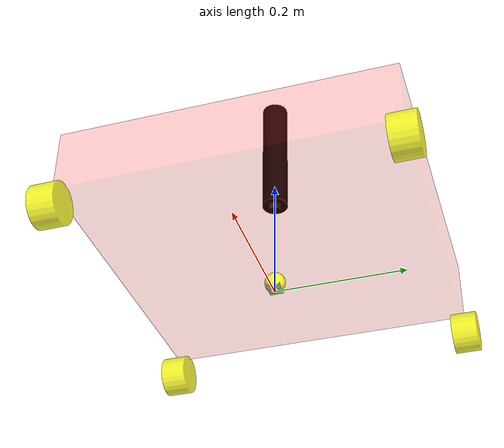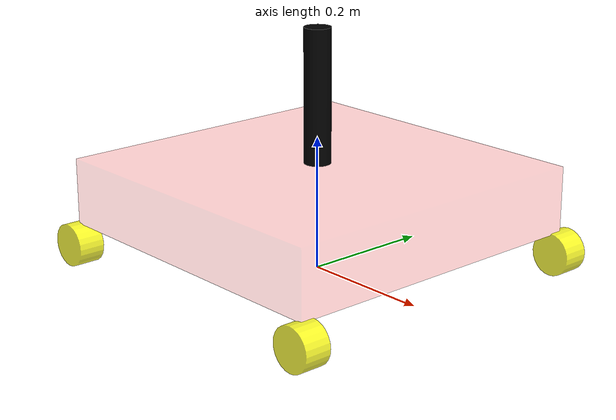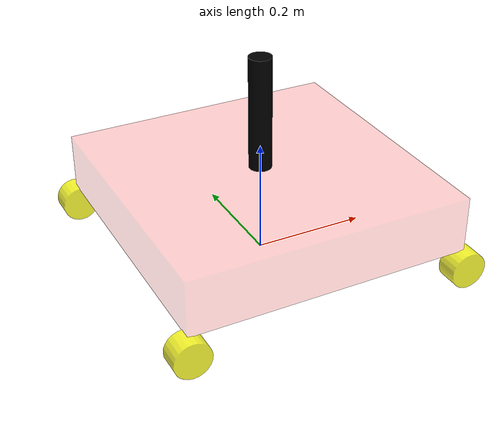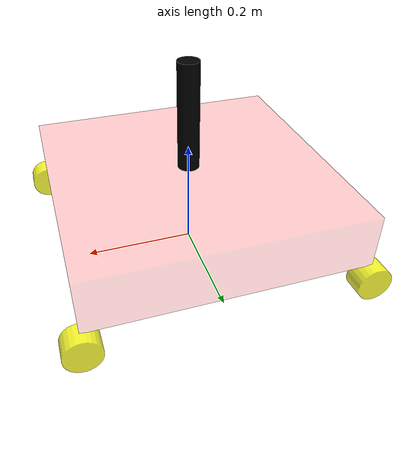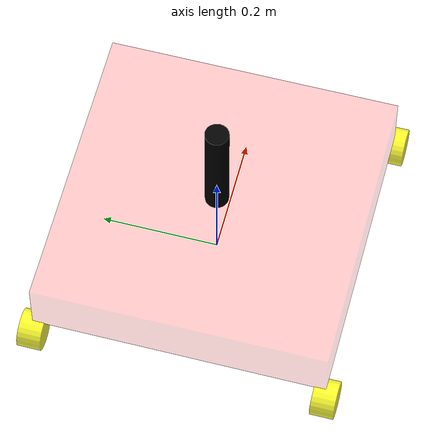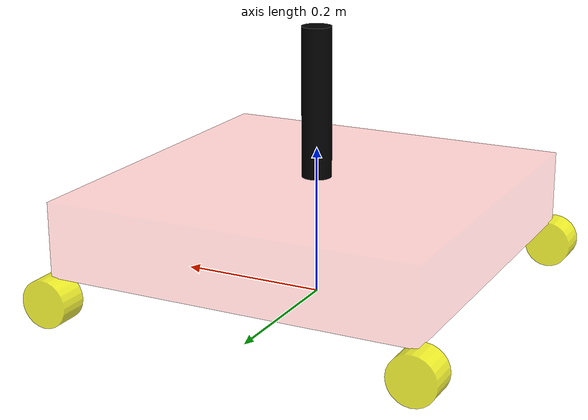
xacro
<?xml version="1.0"?>

<robot name="fishbot" xmlns:xacro="http://www.ros.org/wiki/xacro">

    <!-- 包含机器人的身体部件 -->
    <xacro:include filename="base.xacro"/>
    <xacro:include filename="imu.xacro"/>
    <xacro:include filename="laser.xacro"/>
    <xacro:include filename="drive_wheel.xacro"/>
    <xacro:include filename="caster_wheel.xacro"/>

    <!-- 调用宏 -->
    <xacro:base_xacro length="0.5" width="0.5" height="0.1"/> <!-- 机器人的身体部件 -->
    <xacro:imu_xacro xyz = "0 0 -0.1"/> <!-- 机器人的IMU部件 -->
    <xacro:laser_xacro xyz = "0 0 0.1"/> <!-- 机器人的激光雷达部件 -->
    <xacro:drive_wheel_xacro wheel_name="left_front_wheel"   xyz = " 0.25  0.25 -0.08"/> <!-- 左前驱动轮 -->
    <xacro:drive_wheel_xacro wheel_name="right_front_wheel"  xyz = " 0.25 -0.25 -0.08"/> <!-- 右前驱动轮 -->
    <xacro:drive_wheel_xacro wheel_name="left_rear_wheel"    xyz = "-0.25  0.25 -0.08"/> <!-- 左后驱动轮 -->
    <xacro:drive_wheel_xacro wheel_name="right_rear_wheel"   xyz = "-0.25 -0.25 -0.08"/> <!-- 右后驱动轮 -->
    <xacro:caster_wheel_xacro wheel_name="center_caster" xyz = "0 0 -0.096"/> <!-- 中心万向轮 -->

    <!-- ==================== 差速驱动插件 ==================== -->
    <gazebo>
        <plugin
            filename="libignition-gazebo-diff-drive-system.so"
            name="ignition::gazebo::systems::DiffDrive">        <!-- Gazebo 内置差速驱动插件库 --> <!-- 插件全限定名 -->
            <!-- 左侧驱动轮关节（两个轮子速度一致，通过差速实现转向） -->
            <left_joint>left_front_wheel_joint</left_joint>
            <left_joint>left_rear_wheel_joint</left_joint>
            <!-- 右侧驱动轮关节 -->
            <right_joint>right_front_wheel_joint</right_joint>
            <right_joint>right_rear_wheel_joint</right_joint>
            <!-- 左右轮间距（米），用于差速运动学解算 -->
            <wheel_separation>0.5</wheel_separation>
            <!-- 轮子半径（米），用于线速度与角速度转换 -->
            <wheel_radius>0.032</wheel_radius>
            <!-- 里程计话题发布频率（Hz） -->
            <odom_publish_frequency>30</odom_publish_frequency>
            <!-- 订阅的速度控制话题，导航栈通过此话题下发运动指令 -->
            <topic>cmd_vel</topic>
        </plugin>
    </gazebo>

</robot>

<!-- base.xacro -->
<robot xmlns:xacro="http://www.ros.org/wiki/xacro">
    <xacro:macro name = "base_xacro" params = "length width height">
        <!-- 机器人的身体部件 -->
        <link name = "base_link">
            <!-- 部件的外观描述 -->
            <visual>
                <!-- 相对于它所属 link 原点的位置偏移 -->
                <origin xyz="0 0 0" rpy="0 0 0"/>
                <!-- 几何形状 -->
                <geometry>
                    <box size="${length} ${width} ${height}"/>   <!-- 长lengthm 宽widthm 高heightm -->
                </geometry>
                <!-- 材质颜色 -->
                <material name="red">
                    <color rgba="1 0 0 0.2"/>    <!-- 红 绿 蓝 透明度，范围0~1 -->
                </material>
            </visual>
            <!-- 碰撞体积 (与visual几何一致) -->
            <collision>
                <origin xyz="0 0 0" rpy="0 0 0"/>
                <geometry>
                    <box size="${length} ${width} ${height}"/>
                </geometry>
            </collision>
            <!-- 惯性 (质量与转动惯量，Gazebo仿真必需) -->
            <inertial>
                <mass value="5"/>
                <!-- 长方体转动惯量: Ixx=m/12*(y²+z²), Iyy=m/12*(x²+z²), Izz=m/12*(x²+y²) -->
                <inertia ixx="${5.0/12.0 * (width*width + height*height)}"
                         iyy="${5.0/12.0 * (length*length + height*height)}"
                         izz="${5.0/12.0 * (length*length + width*width)}"
                         ixy="0" ixz="0" iyz="0"/>
            </inertial>
        </link>

    <!-- 添加虚拟部件，使机器人轮子贴合地面 -->
    <link name = "base_footprint"/>

    <joint name = "base_footprint_joint" type = "fixed">
        <parent link = "base_footprint"/>
        <child link = "base_link"/>
        <origin xyz="0 0 0.112" rpy="0 0 0"/> <!-- base_link 在 base_footprint 上方 0.112m，轮子恰好贴地 -->
    </joint>

    </xacro:macro>
</robot>

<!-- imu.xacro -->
<robot xmlns:xacro="http://www.ros.org/wiki/xacro">
    <xacro:macro name = "imu_xacro" params = "xyz">
        <!-- 机器人的IMU部件 -->
        <link name = "imu_link">
            <!-- 部件的外观描述 -->
            <visual>
                <!-- 相对于它所属 link 原点的位置偏移 -->
                <origin xyz="0 0 0" rpy="0 0 0"/>
                <!-- 几何形状 -->
                <geometry>
                    <box size="0.02 0.02 0.02"/>
                </geometry>
                <!-- 材质颜色 -->
                <material name="gray">
                    <color rgba="0 0 0 0.5"/>
                </material>
            </visual>
            <!-- 碰撞体积 (与visual几何一致) -->
            <collision>
                <origin xyz="0 0 0" rpy="0 0 0"/>
                <geometry>
                    <box size="0.02 0.02 0.02"/>
                </geometry>
            </collision>
            <!-- 惯性 (质量与转动惯量，Gazebo仿真必需) -->
            <inertial>
                <mass value="0.01"/>
                <inertia ixx="0.000000667" iyy="0.000000667" izz="0.000000667"
                         ixy="0" ixz="0" iyz="0"/>
            </inertial>
        </link>

        <!-- 将IMU部件固定到机器人身体部件 -->
        <joint name = "imu_link_joint" type = "fixed">
            <parent link = "base_link"/>
            <child link = "imu_link"/>
            <origin xyz="${xyz}" rpy="0 0 0"/> <!-- child(imu_link) 相对于 parent(base_link) 的偏移 -->
        </joint>
    </xacro:macro>
</robot>

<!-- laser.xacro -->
<robot xmlns:xacro="http://www.ros.org/wiki/xacro">
    <xacro:macro name = "laser_xacro" params = "xyz">
        <!-- 雷达支撑杆部件 -->
        <link name = "laser_cylinder_link">
            <!-- 部件的外观描述 -->
            <visual>
                <!-- 相对于它所属 link 原点的位置偏移 -->
                <origin xyz="0 0 0" rpy="0 0 0"/>
                <!-- 几何形状 -->
                <geometry>
                    <cylinder radius = "0.01" length = "0.1"/>  <!-- 圆柱体：半径0.01m 高0.1m -->
                </geometry>
                <!-- 材质颜色 -->
                <material name="black">
                    <color rgba="0 0 0 1.0"/>
                </material>
            </visual>
            <!-- 碰撞体积 (与visual几何一致) -->
            <collision>
                <origin xyz="0 0 0" rpy="0 0 0"/>
                <geometry>
                    <cylinder radius="0.01" length="0.1"/>
                </geometry>
            </collision>
            <!-- 惯性 (质量与转动惯量，Gazebo仿真必需) -->
            <inertial>
                <mass value="0.1"/>
                <inertia ixx="0.0000858" iyy="0.000005" izz="0.0000858"
                         ixy="0" ixz="0" iyz="0"/>
            </inertial>
        </link>

        <!-- 雷达部件 -->
        <link name = "laser_link">
            <!-- 部件的外观描述 -->
            <visual>
                <!-- 相对于它所属 link 原点的位置偏移 -->
                <origin xyz="0 0 0" rpy="0 0 0"/>
                <!-- 几何形状 -->
                <geometry>
                    <cylinder radius = "0.02" length = "0.2"/>  <!-- 圆柱体：半径0.02m 高0.2m -->
                </geometry>
                <!-- 材质颜色 -->
                <material name="black">
                    <color rgba="0 0 0 1.0"/>
                </material>
            </visual>
            <!-- 碰撞体积 (与visual几何一致) -->
            <collision>
                <origin xyz="0 0 0" rpy="0 0 0"/>
                <geometry>
                    <cylinder radius="0.02" length="0.2"/>
                </geometry>
            </collision>
            <!-- 惯性 (质量与转动惯量，Gazebo仿真必需) -->
            <inertial>
                <mass value="0.2"/>
                <inertia ixx="0.000687" iyy="0.00004" izz="0.000687"
                         ixy="0" ixz="0" iyz="0"/>
            </inertial>
        </link>

        <!-- 将雷达固定到支撑杆 -->
        <joint name = "laser_joint" type = "fixed">
            <parent link = "laser_cylinder_link"/>
            <child link = "laser_link"/>
            <origin xyz="0 0 0.05" rpy="0 0 0"/> <!-- child(laser_link) 相对于 parent(laser_cylinder_link) 的偏移 -->
        </joint>

        <!-- 将雷达支撑杆固定到机器人身体 -->
        <joint name = "laser_cylinder_joint" type = "fixed">
            <parent link = "base_link"/>
            <child link = "laser_cylinder_link"/>
            <origin xyz="${xyz}" rpy="0 0 0"/> <!-- child(laser_cylinder_link) 相对于 parent(base_link) 的偏移 -->
        </joint>
        <gazebo reference="laser_cylinder_link">
            <visual>
                <material>
                    <ambient>0 0 1 1</ambient>
                    <diffuse>0 0 1 1</diffuse>
                    <specular>0.1 0.1 0.1 1</specular>
                    <emissive>0 0 0 1</emissive>
                </material>
            </visual>
        </gazebo>
        <gazebo reference="laser_link">
            <visual>
                <material>
                    <ambient>0 0 1 1</ambient>
                    <diffuse>0 0 1 1</diffuse>
                    <specular>0.1 0.1 0.1 1</specular>
                    <emissive>0 0 0 1</emissive>
                </material>
            </visual>
        </gazebo>
    </xacro:macro>
</robot>

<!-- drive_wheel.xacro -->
<robot xmlns:xacro="http://www.ros.org/wiki/xacro">
    <xacro:macro name = "drive_wheel_xacro" params = "wheel_name xyz">
        <link name = "${wheel_name}_link">
            <!-- 部件的外观描述 -->
            <visual>
                <!-- 相对于它所属 link 原点的位置偏移 -->
                <!-- 1.5708弧度，表示绕X轴旋转90度，把竖直的圆柱体放平成轮子 -->
                <origin xyz="0 0 0" rpy="1.5708 0 0"/>
                <!-- 几何形状 -->
                <geometry>
                    <cylinder radius="0.032" length="0.04"/>   <!-- 半径0.032m 高0.04m -->
                </geometry>
                <!-- 材质颜色 -->
                <material name="yellow">
                    <color rgba="1 1 0 0.8"/>    <!-- 红 绿 蓝 透明度，范围0~1 -->
                </material>
            </visual>
            <!-- 碰撞体积 (与visual几何一致) -->
            <collision>
                <origin xyz="0 0 0" rpy="1.5708 0 0"/>
                <geometry>
                    <cylinder radius="0.032" length="0.04"/>
                </geometry>
            </collision>
            <!-- 惯性 (质量与转动惯量，Gazebo仿真必需) -->
            <inertial>
                <mass value="0.1"/>
                <!-- 圆柱体转动惯量 (半径r=0.032, 长l=0.04, 绕轴I=mr²/2, 垂直轴I=m(3r²+l²)/12) -->
                <inertia ixx="0.0000389" iyy="0.0000512" izz="0.0000389"
                         ixy="0" ixz="0" iyz="0"/>
            </inertial>
        </link>
        <joint name = "${wheel_name}_joint" type = "continuous">
            <parent link = "base_link"/>
            <child link = "${wheel_name}_link"/>
            <origin xyz="${xyz}" rpy="0 0 0"/> <!-- child(${${wheel_name}_link) 相对于 parent(base_link) 的偏移 -->
            <axis xyz="0 1 0"/> <!-- 轴向为y轴 -->
        </joint>
        <!-- Gazebo Fortress 驱动轮接触物理参数，防打滑陷地 -->
        <gazebo reference="${wheel_name}_link">
            <collision>
                <surface>
                    <contact>
                        <ode>
                            <mu>20.0</mu>     <!-- 滚动方向摩擦系数，越大越不打滑 -->
                            <mu2>20.0</mu2>   <!-- 横向侧滑摩擦系数 -->
                            <kp>10000000000.0</kp> <!-- 接触刚度，轮子硬度 -->
                            <kd>1.0</kd>      <!-- 接触阻尼，落地缓冲 -->
                        </ode>
                    </contact>
                </surface>
            </collision>
        </gazebo>
    </xacro:macro>
</robot>

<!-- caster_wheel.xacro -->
<robot xmlns:xacro="http://www.ros.org/wiki/xacro">
    <xacro:macro name = "caster_wheel_xacro" params = "wheel_name xyz">
        <link name = "${wheel_name}_link">
            <!-- 部件的外观描述 -->
            <visual>
                <!-- 相对于它所属 link 原点的位置偏移 -->
                <origin xyz="0 0 0" rpy="0 0 0"/>
                <!-- 几何形状 -->
                <geometry>
                    <sphere radius="0.016"/>   <!-- 半径0.016m -->
                </geometry>
                <!-- 材质颜色 -->
                <material name="yellow">
                    <color rgba="1 1 0 0.8"/>    <!-- 红 绿 蓝 透明度，范围0~1 -->
                </material>
            </visual>
            <!-- 碰撞体积 (与visual几何一致) -->
            <collision>
                <origin xyz="0 0 0" rpy="0 0 0"/>
                <geometry>
                    <sphere radius="0.016"/>
                </geometry>
            </collision>
            <!-- 惯性 (质量与转动惯量，Gazebo仿真必需) -->
            <inertial>
                <mass value="0.05"/>
                <!-- 球体转动惯量: I = 2/5 * m * r² -->
                <inertia ixx="0.00000512" iyy="0.00000512" izz="0.00000512"
                         ixy="0" ixz="0" iyz="0"/>
            </inertial>
        </link>
        <joint name = "${wheel_name}_joint" type = "fixed">
            <parent link = "base_link"/>
            <child link = "${wheel_name}_link"/>
            <origin xyz="${xyz}" rpy="0 0 0"/> <!-- child(${${wheel_name}_link) 相对于 parent(base_link) 的偏移 -->
        </joint>
        <!-- Gazebo Fortress 万向轮接触物理参数，无摩擦可自由滑动 -->
        <gazebo reference="${wheel_name}_link">
            <collision>
                <surface>
                    <contact>
                        <ode>
                            <mu>0.0</mu>      <!-- 滚动摩擦为0，万向轮无阻力 -->
                            <mu2>0.0</mu2>    <!-- 侧滑摩擦为0，万向轮可自由转向 -->
                            <kp>10000000000.0</kp> <!-- 接触刚度，避免陷地 -->
                            <kd>1.0</kd>      <!-- 接触阻尼，落地缓冲 -->
                        </ode>
                    </contact>
                </surface>
            </collision>
        </gazebo>
    </xacro:macro>
</robot>
